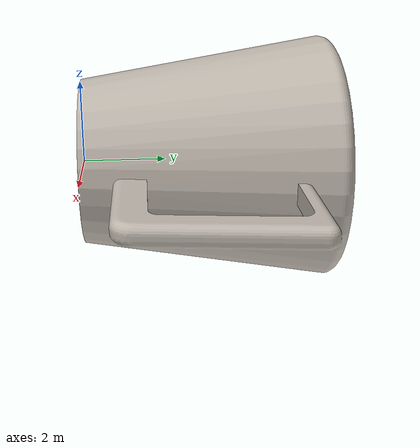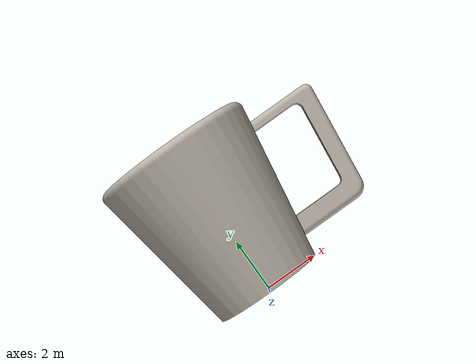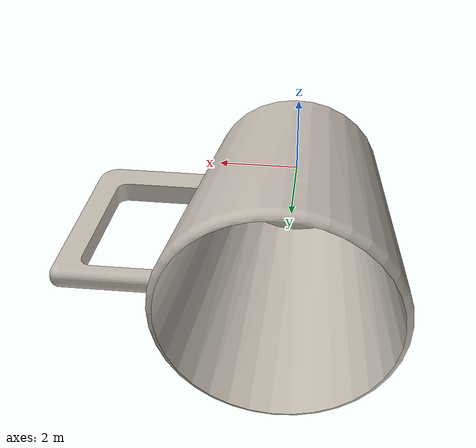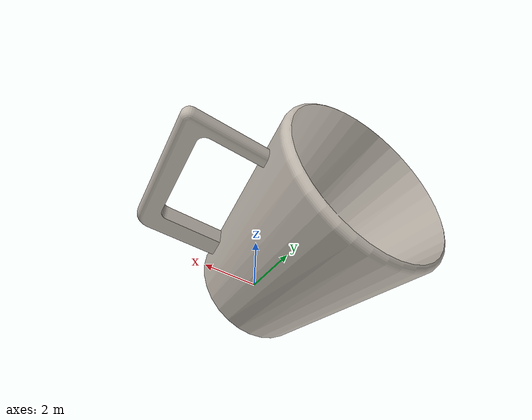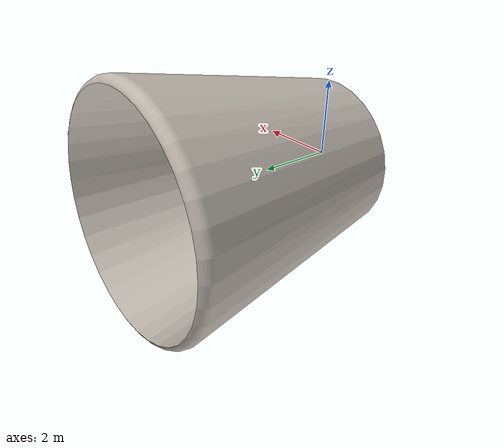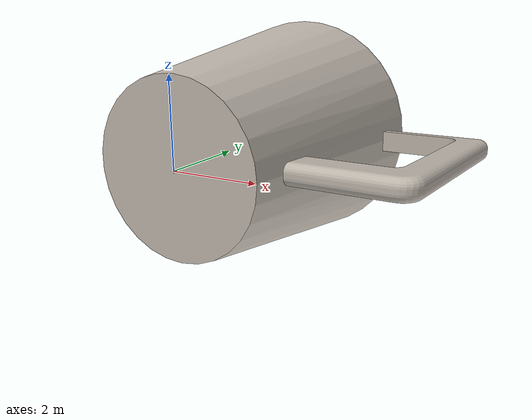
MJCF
<!-- sample of a general object defined in mujoco -->
<mujoco model="mug">
	<asset>
		<mesh file="meshes/mug.stl" name="mug_mesh" scale="0.8 0.8 0.8"/>
		<texture file="../textures/ceramic.png" name="tex-ceramic"/>
		<material name="ceramic" reflectance="0.5" texrepeat="1 1" texture="tex-ceramic" texuniform="true"/>

	</asset>
	<worldbody>
		<body>
			<body name="collision">
				<geom pos="0 0 0"  mesh="mug_mesh" type="mesh" solimp="0.998 0.998 0.001" solref="0.001 1" density="1000" friction="0.5" material="ceramic" group="1"/>
			</body>
			<body name="visual">
				<geom pos="0 0 0"  mesh="mug_mesh" type="mesh" material="ceramic"  conaffinity="0" contype="0" mass="0.0001" group="1"/>
			</body>
			<site pos="0 0 -0.045" name="bottom_site"/>
			<site pos="0 0 0.03" name="top_site"/>
			<site pos="0.05 0.03 0" name="horizontal_radius_site"/>
		</body>
	</worldbody>
</mujoco>
